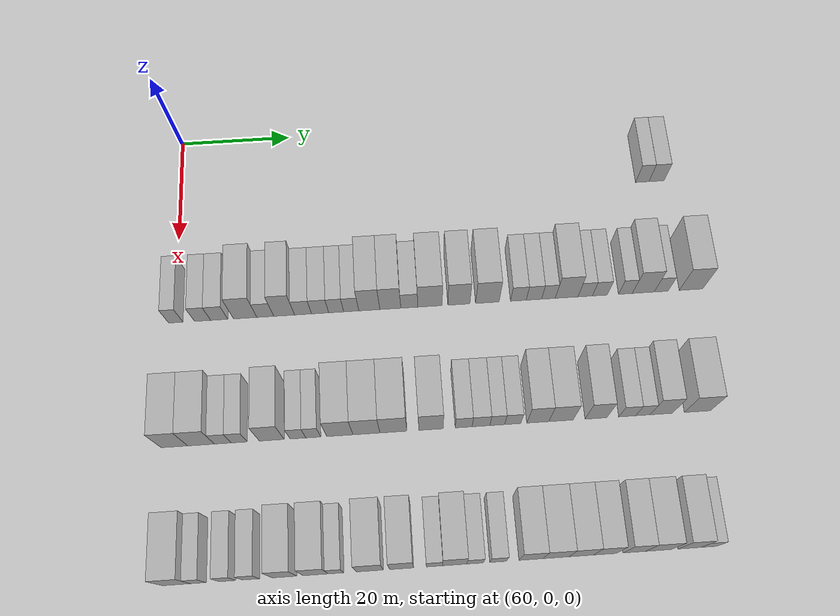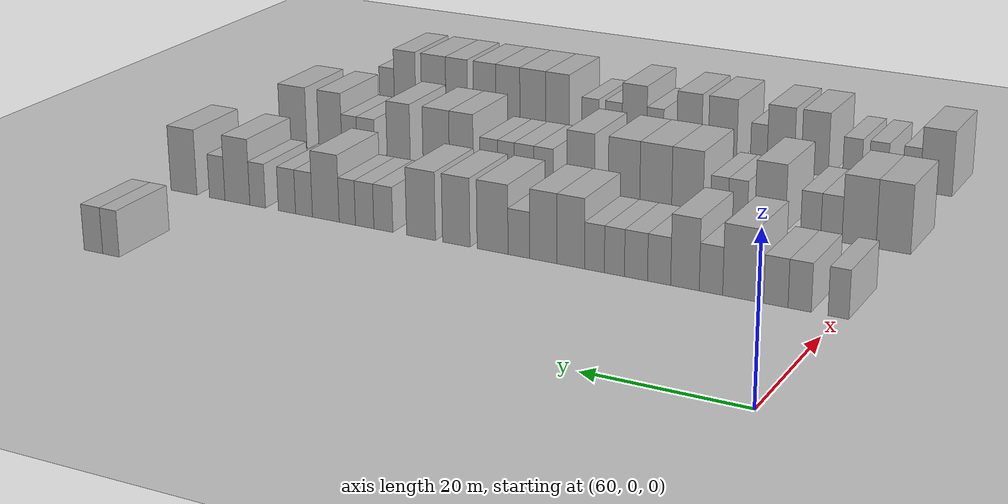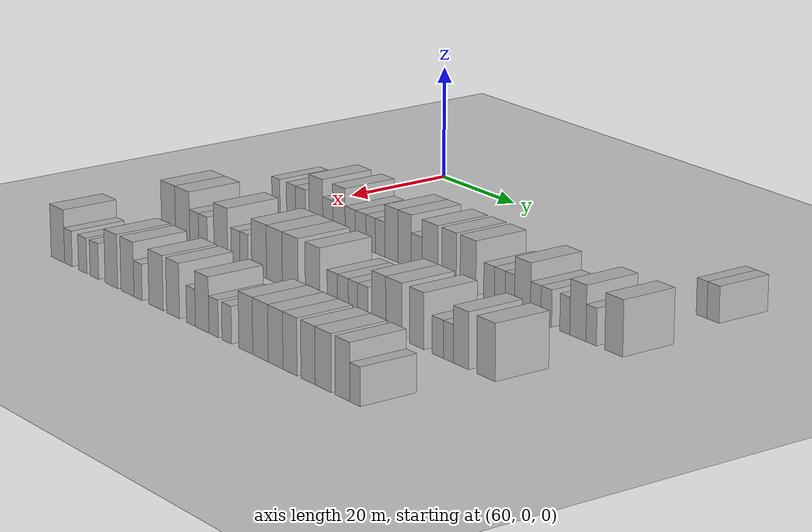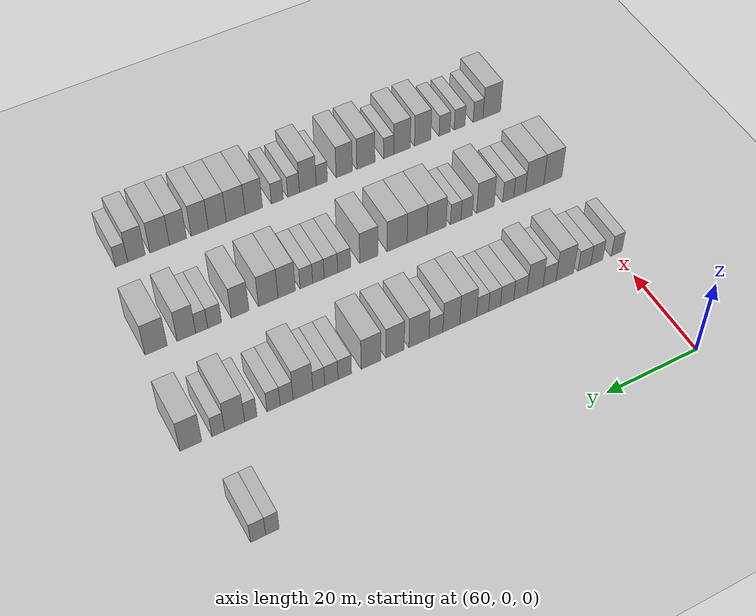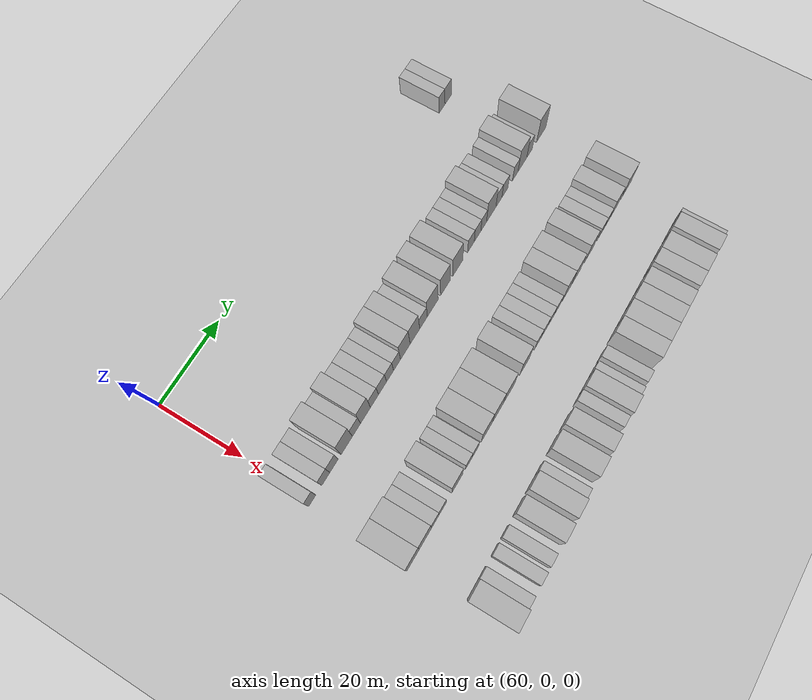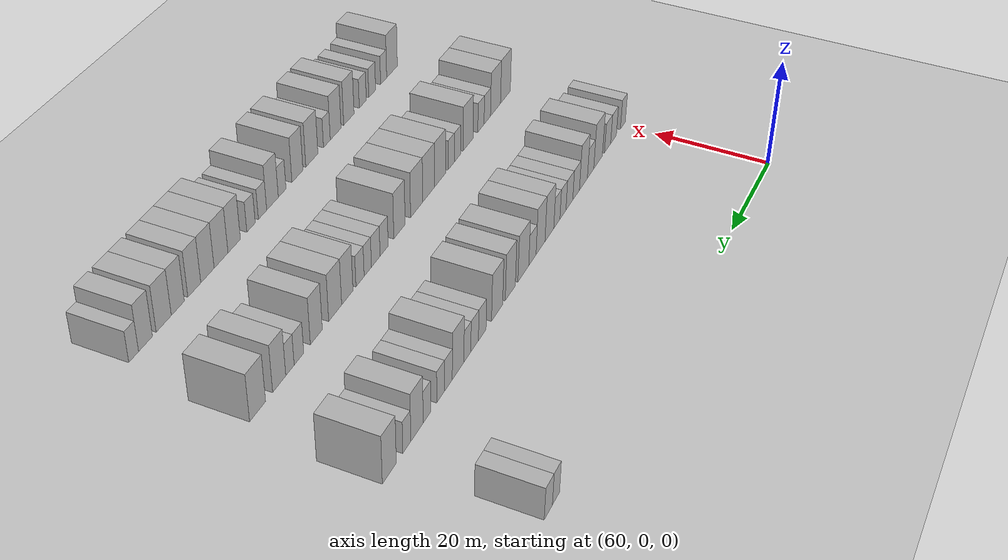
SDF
<sdf version="1.6">
 <world name="default">
  <include>
   <name>ground_plane_2</name>
   <uri>model://HANNAS_ground_plane</uri>
   <pose>100 0 0  0 0 0</pose>
  </include>
  <model name="building_496">
   <static>1</static>
   <pose>69.0000 85.3006 0 0.000000 0.000000 0.000000</pose>
   <link name="link">
    <pose>0 0 3.00 0 0 0</pose>
    <collision name="collision"><geometry><box><size>10.0000 2.5053 6.0000</size></box></geometry></collision>
    <visual name="visual">
     <cast_shadows>0</cast_shadows>
     <geometry><box><size>10.0000 2.5053 6.0000</size></box></geometry>
     <material>
      <script>
       <uri>model://HANNAS_wall/materials/scripts</uri>
       <uri>model://HANNAS_wall/materials/textures</uri>
       <name>vrc/HANNAS_wall</name>
      </script>
     </material>
    </visual>
   </link>
  </model>
  <model name="building_497">
   <static>1</static>
   <pose>69.0000 87.9721 0 0.000000 0.000000 0.000000</pose>
   <link name="link">
    <pose>0 0 3.00 0 0 0</pose>
    <collision name="collision"><geometry><box><size>10.0000 2.8376 6.0000</size></box></geometry></collision>
    <visual name="visual">
     <cast_shadows>0</cast_shadows>
     <geometry><box><size>10.0000 2.8376 6.0000</size></box></geometry>
     <material>
      <script>
       <uri>model://HANNAS_wall/materials/scripts</uri>
       <uri>model://HANNAS_wall/materials/textures</uri>
       <name>vrc/HANNAS_wall</name>
      </script>
     </material>
    </visual>
   </link>
  </model>
  <model name="building_666">
   <static>1</static>
   <pose>91.0000 0.0036 0 0.000000 0.000000 0.000000</pose>
   <link name="link">
    <pose>0 0 3.00 0 0 0</pose>
    <collision name="collision"><geometry><box><size>10.0000 2.4846 6.0000</size></box></geometry></collision>
    <visual name="visual">
     <cast_shadows>0</cast_shadows>
     <geometry><box><size>10.0000 2.4846 6.0000</size></box></geometry>
     <material>
      <script>
       <uri>model://HANNAS_wall/materials/scripts</uri>
       <uri>model://HANNAS_wall/materials/textures</uri>
       <name>vrc/HANNAS_wall</name>
      </script>
     </material>
    </visual>
   </link>
  </model>
  <model name="building_667">
   <static>1</static>
   <pose>91.0000 4.6505 0 0.000000 0.000000 0.000000</pose>
   <link name="link">
    <pose>0 0 3.00 0 0 0</pose>
    <collision name="collision"><geometry><box><size>10.0000 2.8091 6.0000</size></box></geometry></collision>
    <visual name="visual">
     <cast_shadows>0</cast_shadows>
     <geometry><box><size>10.0000 2.8091 6.0000</size></box></geometry>
     <material>
      <script>
       <uri>model://HANNAS_wall/materials/scripts</uri>
       <uri>model://HANNAS_wall/materials/textures</uri>
       <name>vrc/HANNAS_wall</name>
      </script>
     </material>
    </visual>
   </link>
  </model>
  <model name="building_668">
   <static>1</static>
   <pose>91.0000 7.5426 0 0.000000 0.000000 0.000000</pose>
   <link name="link">
    <pose>0 0 3.00 0 0 0</pose>
    <collision name="collision"><geometry><box><size>10.0000 2.9751 6.0000</size></box></geometry></collision>
    <visual name="visual">
     <cast_shadows>0</cast_shadows>
     <geometry><box><size>10.0000 2.9751 6.0000</size></box></geometry>
     <material>
      <script>
       <uri>model://HANNAS_wall/materials/scripts</uri>
       <uri>model://HANNAS_wall/materials/textures</uri>
       <name>vrc/HANNAS_wall</name>
      </script>
     </material>
    </visual>
   </link>
  </model>
  <model name="building_669">
   <static>1</static>
   <pose>91.0000 12.0635 0 0.000000 0.000000 0.000000</pose>
   <link name="link">
    <pose>0 0 4.50 0 0 0</pose>
    <collision name="collision"><geometry><box><size>10.0000 4.0667 9.0000</size></box></geometry></collision>
    <visual name="visual">
     <cast_shadows>0</cast_shadows>
     <geometry><box><size>10.0000 4.0667 9.0000</size></box></geometry>
     <material>
      <script>
       <uri>model://HANNAS_wall/materials/scripts</uri>
       <uri>model://HANNAS_wall/materials/textures</uri>
       <name>vrc/HANNAS_wall</name>
      </script>
     </material>
    </visual>
   </link>
  </model>
  <model name="building_670">
   <static>1</static>
   <pose>91.0000 15.5641 0 0.000000 0.000000 0.000000</pose>
   <link name="link">
    <pose>0 0 3.00 0 0 0</pose>
    <collision name="collision"><geometry><box><size>10.0000 2.9344 6.0000</size></box></geometry></collision>
    <visual name="visual">
     <cast_shadows>0</cast_shadows>
     <geometry><box><size>10.0000 2.9344 6.0000</size></box></geometry>
     <material>
      <script>
       <uri>model://HANNAS_wall/materials/scripts</uri>
       <uri>model://HANNAS_wall/materials/textures</uri>
       <name>vrc/HANNAS_wall</name>
      </script>
     </material>
    </visual>
   </link>
  </model>
  <model name="building_671">
   <static>1</static>
   <pose>91.0000 18.8456 0 0.000000 0.000000 0.000000</pose>
   <link name="link">
    <pose>0 0 4.50 0 0 0</pose>
    <collision name="collision"><geometry><box><size>10.0000 3.6286 9.0000</size></box></geometry></collision>
    <visual name="visual">
     <cast_shadows>0</cast_shadows>
     <geometry><box><size>10.0000 3.6286 9.0000</size></box></geometry>
     <material>
      <script>
       <uri>model://HANNAS_wall/materials/scripts</uri>
       <uri>model://HANNAS_wall/materials/textures</uri>
       <name>vrc/HANNAS_wall</name>
      </script>
     </material>
    </visual>
   </link>
  </model>
  <model name="building_672">
   <static>1</static>
   <pose>91.0000 22.1494 0 0.000000 0.000000 0.000000</pose>
   <link name="link">
    <pose>0 0 3.00 0 0 0</pose>
    <collision name="collision"><geometry><box><size>10.0000 2.9791 6.0000</size></box></geometry></collision>
    <visual name="visual">
     <cast_shadows>0</cast_shadows>
     <geometry><box><size>10.0000 2.9791 6.0000</size></box></geometry>
     <material>
      <script>
       <uri>model://HANNAS_wall/materials/scripts</uri>
       <uri>model://HANNAS_wall/materials/textures</uri>
       <name>vrc/HANNAS_wall</name>
      </script>
     </material>
    </visual>
   </link>
  </model>
  <model name="building_673">
   <static>1</static>
   <pose>91.0000 25.1329 0 0.000000 0.000000 0.000000</pose>
   <link name="link">
    <pose>0 0 3.00 0 0 0</pose>
    <collision name="collision"><geometry><box><size>10.0000 2.9878 6.0000</size></box></geometry></collision>
    <visual name="visual">
     <cast_shadows>0</cast_shadows>
     <geometry><box><size>10.0000 2.9878 6.0000</size></box></geometry>
     <material>
      <script>
       <uri>model://HANNAS_wall/materials/scripts</uri>
       <uri>model://HANNAS_wall/materials/textures</uri>
       <name>vrc/HANNAS_wall</name>
      </script>
     </material>
    </visual>
   </link>
  </model>
  <model name="building_674">
   <static>1</static>
   <pose>91.0000 27.9449 0 0.000000 0.000000 0.000000</pose>
   <link name="link">
    <pose>0 0 3.00 0 0 0</pose>
    <collision name="collision"><geometry><box><size>10.0000 2.6363 6.0000</size></box></geometry></collision>
    <visual name="visual">
     <cast_shadows>0</cast_shadows>
     <geometry><box><size>10.0000 2.6363 6.0000</size></box></geometry>
     <material>
      <script>
       <uri>model://HANNAS_wall/materials/scripts</uri>
       <uri>model://HANNAS_wall/materials/textures</uri>
       <name>vrc/HANNAS_wall</name>
      </script>
     </material>
    </visual>
   </link>
  </model>
  <model name="building_675">
   <static>1</static>
   <pose>91.0000 30.5780 0 0.000000 0.000000 0.000000</pose>
   <link name="link">
    <pose>0 0 3.00 0 0 0</pose>
    <collision name="collision"><geometry><box><size>10.0000 2.6299 6.0000</size></box></geometry></collision>
    <visual name="visual">
     <cast_shadows>0</cast_shadows>
     <geometry><box><size>10.0000 2.6299 6.0000</size></box></geometry>
     <material>
      <script>
       <uri>model://HANNAS_wall/materials/scripts</uri>
       <uri>model://HANNAS_wall/materials/textures</uri>
       <name>vrc/HANNAS_wall</name>
      </script>
     </material>
    </visual>
   </link>
  </model>
  <model name="building_676">
   <static>1</static>
   <pose>91.0000 33.7360 0 0.000000 0.000000 0.000000</pose>
   <link name="link">
    <pose>0 0 4.50 0 0 0</pose>
    <collision name="collision"><geometry><box><size>10.0000 3.6861 9.0000</size></box></geometry></collision>
    <visual name="visual">
     <cast_shadows>0</cast_shadows>
     <geometry><box><size>10.0000 3.6861 9.0000</size></box></geometry>
     <material>
      <script>
       <uri>model://HANNAS_wall/materials/scripts</uri>
       <uri>model://HANNAS_wall/materials/textures</uri>
       <name>vrc/HANNAS_wall</name>
      </script>
     </material>
    </visual>
   </link>
  </model>
  <model name="building_677">
   <static>1</static>
   <pose>91.0000 37.4193 0 0.000000 0.000000 0.000000</pose>
   <link name="link">
    <pose>0 0 4.50 0 0 0</pose>
    <collision name="collision"><geometry><box><size>10.0000 3.6805 9.0000</size></box></geometry></collision>
    <visual name="visual">
     <cast_shadows>0</cast_shadows>
     <geometry><box><size>10.0000 3.6805 9.0000</size></box></geometry>
     <material>
      <script>
       <uri>model://HANNAS_wall/materials/scripts</uri>
       <uri>model://HANNAS_wall/materials/textures</uri>
       <name>vrc/HANNAS_wall</name>
      </script>
     </material>
    </visual>
   </link>
  </model>
  <model name="building_678">
   <static>1</static>
   <pose>91.0000 40.7486 0 0.000000 0.000000 0.000000</pose>
   <link name="link">
    <pose>0 0 3.00 0 0 0</pose>
    <collision name="collision"><geometry><box><size>10.0000 2.9781 6.0000</size></box></geometry></collision>
    <visual name="visual">
     <cast_shadows>0</cast_shadows>
     <geometry><box><size>10.0000 2.9781 6.0000</size></box></geometry>
     <material>
      <script>
       <uri>model://HANNAS_wall/materials/scripts</uri>
       <uri>model://HANNAS_wall/materials/textures</uri>
       <name>vrc/HANNAS_wall</name>
      </script>
     </material>
    </visual>
   </link>
  </model>
  <model name="building_679">
   <static>1</static>
   <pose>91.0000 44.3851 0 0.000000 0.000000 0.000000</pose>
   <link name="link">
    <pose>0 0 4.50 0 0 0</pose>
    <collision name="collision"><geometry><box><size>10.0000 4.2949 9.0000</size></box></geometry></collision>
    <visual name="visual">
     <cast_shadows>0</cast_shadows>
     <geometry><box><size>10.0000 4.2949 9.0000</size></box></geometry>
     <material>
      <script>
       <uri>model://HANNAS_wall/materials/scripts</uri>
       <uri>model://HANNAS_wall/materials/textures</uri>
       <name>vrc/HANNAS_wall</name>
      </script>
     </material>
    </visual>
   </link>
  </model>
  <model name="building_680">
   <static>1</static>
   <pose>91.0000 49.4711 0 0.000000 0.000000 0.000000</pose>
   <link name="link">
    <pose>0 0 4.50 0 0 0</pose>
    <collision name="collision"><geometry><box><size>10.0000 3.8771 9.0000</size></box></geometry></collision>
    <visual name="visual">
     <cast_shadows>0</cast_shadows>
     <geometry><box><size>10.0000 3.8771 9.0000</size></box></geometry>
     <material>
      <script>
       <uri>model://HANNAS_wall/materials/scripts</uri>
       <uri>model://HANNAS_wall/materials/textures</uri>
       <name>vrc/HANNAS_wall</name>
      </script>
     </material>
    </visual>
   </link>
  </model>
  <model name="building_681">
   <static>1</static>
   <pose>91.0000 54.4871 0 0.000000 0.000000 0.000000</pose>
   <link name="link">
    <pose>0 0 4.50 0 0 0</pose>
    <collision name="collision"><geometry><box><size>10.0000 4.1550 9.0000</size></box></geometry></collision>
    <visual name="visual">
     <cast_shadows>0</cast_shadows>
     <geometry><box><size>10.0000 4.1550 9.0000</size></box></geometry>
     <material>
      <script>
       <uri>model://HANNAS_wall/materials/scripts</uri>
       <uri>model://HANNAS_wall/materials/textures</uri>
       <name>vrc/HANNAS_wall</name>
      </script>
     </material>
    </visual>
   </link>
  </model>
  <model name="building_682">
   <static>1</static>
   <pose>91.0000 59.9533 0 0.000000 0.000000 0.000000</pose>
   <link name="link">
    <pose>0 0 3.00 0 0 0</pose>
    <collision name="collision"><geometry><box><size>10.0000 2.7775 6.0000</size></box></geometry></collision>
    <visual name="visual">
     <cast_shadows>0</cast_shadows>
     <geometry><box><size>10.0000 2.7775 6.0000</size></box></geometry>
     <material>
      <script>
       <uri>model://HANNAS_wall/materials/scripts</uri>
       <uri>model://HANNAS_wall/materials/textures</uri>
       <name>vrc/HANNAS_wall</name>
      </script>
     </material>
    </visual>
   </link>
  </model>
  <model name="building_683">
   <static>1</static>
   <pose>91.0000 62.7021 0 0.000000 0.000000 0.000000</pose>
   <link name="link">
    <pose>0 0 3.00 0 0 0</pose>
    <collision name="collision"><geometry><box><size>10.0000 2.7201 6.0000</size></box></geometry></collision>
    <visual name="visual">
     <cast_shadows>0</cast_shadows>
     <geometry><box><size>10.0000 2.7201 6.0000</size></box></geometry>
     <material>
      <script>
       <uri>model://HANNAS_wall/materials/scripts</uri>
       <uri>model://HANNAS_wall/materials/textures</uri>
       <name>vrc/HANNAS_wall</name>
      </script>
     </material>
    </visual>
   </link>
  </model>
  <model name="building_684">
   <static>1</static>
   <pose>91.0000 65.2736 0 0.000000 0.000000 0.000000</pose>
   <link name="link">
    <pose>0 0 3.00 0 0 0</pose>
    <collision name="collision"><geometry><box><size>10.0000 2.4228 6.0000</size></box></geometry></collision>
    <visual name="visual">
     <cast_shadows>0</cast_shadows>
     <geometry><box><size>10.0000 2.4228 6.0000</size></box></geometry>
     <material>
      <script>
       <uri>model://HANNAS_wall/materials/scripts</uri>
       <uri>model://HANNAS_wall/materials/textures</uri>
       <name>vrc/HANNAS_wall</name>
      </script>
     </material>
    </visual>
   </link>
  </model>
  <model name="building_685">
   <static>1</static>
   <pose>91.0000 68.4941 0 0.000000 0.000000 0.000000</pose>
   <link name="link">
    <pose>0 0 4.50 0 0 0</pose>
    <collision name="collision"><geometry><box><size>10.0000 4.0181 9.0000</size></box></geometry></collision>
    <visual name="visual">
     <cast_shadows>0</cast_shadows>
     <geometry><box><size>10.0000 4.0181 9.0000</size></box></geometry>
     <material>
      <script>
       <uri>model://HANNAS_wall/materials/scripts</uri>
       <uri>model://HANNAS_wall/materials/textures</uri>
       <name>vrc/HANNAS_wall</name>
      </script>
     </material>
    </visual>
   </link>
  </model>
  <model name="building_686">
   <static>1</static>
   <pose>91.0000 71.7893 0 0.000000 0.000000 0.000000</pose>
   <link name="link">
    <pose>0 0 3.00 0 0 0</pose>
    <collision name="collision"><geometry><box><size>10.0000 2.5723 6.0000</size></box></geometry></collision>
    <visual name="visual">
     <cast_shadows>0</cast_shadows>
     <geometry><box><size>10.0000 2.5723 6.0000</size></box></geometry>
     <material>
      <script>
       <uri>model://HANNAS_wall/materials/scripts</uri>
       <uri>model://HANNAS_wall/materials/textures</uri>
       <name>vrc/HANNAS_wall</name>
      </script>
     </material>
    </visual>
   </link>
  </model>
  <model name="building_687">
   <static>1</static>
   <pose>91.0000 74.3923 0 0.000000 0.000000 0.000000</pose>
   <link name="link">
    <pose>0 0 3.00 0 0 0</pose>
    <collision name="collision"><geometry><box><size>10.0000 2.6337 6.0000</size></box></geometry></collision>
    <visual name="visual">
     <cast_shadows>0</cast_shadows>
     <geometry><box><size>10.0000 2.6337 6.0000</size></box></geometry>
     <material>
      <script>
       <uri>model://HANNAS_wall/materials/scripts</uri>
       <uri>model://HANNAS_wall/materials/textures</uri>
       <name>vrc/HANNAS_wall</name>
      </script>
     </material>
    </visual>
   </link>
  </model>
  <model name="building_688">
   <static>1</static>
   <pose>91.0000 78.9256 0 0.000000 0.000000 0.000000</pose>
   <link name="link">
    <pose>0 0 3.00 0 0 0</pose>
    <collision name="collision"><geometry><box><size>10.0000 2.4327 6.0000</size></box></geometry></collision>
    <visual name="visual">
     <cast_shadows>0</cast_shadows>
     <geometry><box><size>10.0000 2.4327 6.0000</size></box></geometry>
     <material>
      <script>
       <uri>model://HANNAS_wall/materials/scripts</uri>
       <uri>model://HANNAS_wall/materials/textures</uri>
       <name>vrc/HANNAS_wall</name>
      </script>
     </material>
    </visual>
   </link>
  </model>
  <model name="building_689">
   <static>1</static>
   <pose>91.0000 82.0975 0 0.000000 0.000000 0.000000</pose>
   <link name="link">
    <pose>0 0 4.50 0 0 0</pose>
    <collision name="collision"><geometry><box><size>10.0000 3.9112 9.0000</size></box></geometry></collision>
    <visual name="visual">
     <cast_shadows>0</cast_shadows>
     <geometry><box><size>10.0000 3.9112 9.0000</size></box></geometry>
     <material>
      <script>
       <uri>model://HANNAS_wall/materials/scripts</uri>
       <uri>model://HANNAS_wall/materials/textures</uri>
       <name>vrc/HANNAS_wall</name>
      </script>
     </material>
    </visual>
   </link>
  </model>
  <model name="building_690">
   <static>1</static>
   <pose>91.0000 85.2894 0 0.000000 0.000000 0.000000</pose>
   <link name="link">
    <pose>0 0 3.00 0 0 0</pose>
    <collision name="collision"><geometry><box><size>10.0000 2.4726 6.0000</size></box></geometry></collision>
    <visual name="visual">
     <cast_shadows>0</cast_shadows>
     <geometry><box><size>10.0000 2.4726 6.0000</size></box></geometry>
     <material>
      <script>
       <uri>model://HANNAS_wall/materials/scripts</uri>
       <uri>model://HANNAS_wall/materials/textures</uri>
       <name>vrc/HANNAS_wall</name>
      </script>
     </material>
    </visual>
   </link>
  </model>
  <model name="building_691">
   <static>1</static>
   <pose>91.0000 90.6233 0 0.000000 0.000000 0.000000</pose>
   <link name="link">
    <pose>0 0 4.50 0 0 0</pose>
    <collision name="collision"><geometry><box><size>10.0000 4.1953 9.0000</size></box></geometry></collision>
    <visual name="visual">
     <cast_shadows>0</cast_shadows>
     <geometry><box><size>10.0000 4.1953 9.0000</size></box></geometry>
     <material>
      <script>
       <uri>model://HANNAS_wall/materials/scripts</uri>
       <uri>model://HANNAS_wall/materials/textures</uri>
       <name>vrc/HANNAS_wall</name>
      </script>
     </material>
    </visual>
   </link>
  </model>
  <model name="building_861">
   <static>1</static>
   <pose>113.0000 0.5515 0 0.000000 0.000000 0.000000</pose>
   <link name="link">
    <pose>0 0 4.50 0 0 0</pose>
    <collision name="collision"><geometry><box><size>10.0000 4.3898 9.0000</size></box></geometry></collision>
    <visual name="visual">
     <cast_shadows>0</cast_shadows>
     <geometry><box><size>10.0000 4.3898 9.0000</size></box></geometry>
     <material>
      <script>
       <uri>model://HANNAS_wall/materials/scripts</uri>
       <uri>model://HANNAS_wall/materials/textures</uri>
       <name>vrc/HANNAS_wall</name>
      </script>
     </material>
    </visual>
   </link>
  </model>
  <model name="building_862">
   <static>1</static>
   <pose>113.0000 4.9436 0 0.000000 0.000000 0.000000</pose>
   <link name="link">
    <pose>0 0 4.50 0 0 0</pose>
    <collision name="collision"><geometry><box><size>10.0000 4.3943 9.0000</size></box></geometry></collision>
    <visual name="visual">
     <cast_shadows>0</cast_shadows>
     <geometry><box><size>10.0000 4.3943 9.0000</size></box></geometry>
     <material>
      <script>
       <uri>model://HANNAS_wall/materials/scripts</uri>
       <uri>model://HANNAS_wall/materials/textures</uri>
       <name>vrc/HANNAS_wall</name>
      </script>
     </material>
    </visual>
   </link>
  </model>
  <model name="building_863">
   <static>1</static>
   <pose>113.0000 8.5275 0 0.000000 0.000000 0.000000</pose>
   <link name="link">
    <pose>0 0 3.00 0 0 0</pose>
    <collision name="collision"><geometry><box><size>10.0000 2.7736 6.0000</size></box></geometry></collision>
    <visual name="visual">
     <cast_shadows>0</cast_shadows>
     <geometry><box><size>10.0000 2.7736 6.0000</size></box></geometry>
     <material>
      <script>
       <uri>model://HANNAS_wall/materials/scripts</uri>
       <uri>model://HANNAS_wall/materials/textures</uri>
       <name>vrc/HANNAS_wall</name>
      </script>
     </material>
    </visual>
   </link>
  </model>
  <model name="building_864">
   <static>1</static>
   <pose>113.0000 11.2412 0 0.000000 0.000000 0.000000</pose>
   <link name="link">
    <pose>0 0 3.00 0 0 0</pose>
    <collision name="collision"><geometry><box><size>10.0000 2.6538 6.0000</size></box></geometry></collision>
    <visual name="visual">
     <cast_shadows>0</cast_shadows>
     <geometry><box><size>10.0000 2.6538 6.0000</size></box></geometry>
     <material>
      <script>
       <uri>model://HANNAS_wall/materials/scripts</uri>
       <uri>model://HANNAS_wall/materials/textures</uri>
       <name>vrc/HANNAS_wall</name>
      </script>
     </material>
    </visual>
   </link>
  </model>
  <model name="building_865">
   <static>1</static>
   <pose>113.0000 16.6194 0 0.000000 0.000000 0.000000</pose>
   <link name="link">
    <pose>0 0 4.50 0 0 0</pose>
    <collision name="collision"><geometry><box><size>10.0000 4.1024 9.0000</size></box></geometry></collision>
    <visual name="visual">
     <cast_shadows>0</cast_shadows>
     <geometry><box><size>10.0000 4.1024 9.0000</size></box></geometry>
     <material>
      <script>
       <uri>model://HANNAS_wall/materials/scripts</uri>
       <uri>model://HANNAS_wall/materials/textures</uri>
       <name>vrc/HANNAS_wall</name>
      </script>
     </material>
    </visual>
   </link>
  </model>
  <model name="building_866">
   <static>1</static>
   <pose>113.0000 20.9766 0 0.000000 0.000000 0.000000</pose>
   <link name="link">
    <pose>0 0 3.00 0 0 0</pose>
    <collision name="collision"><geometry><box><size>10.0000 2.6120 6.0000</size></box></geometry></collision>
    <visual name="visual">
     <cast_shadows>0</cast_shadows>
     <geometry><box><size>10.0000 2.6120 6.0000</size></box></geometry>
     <material>
      <script>
       <uri>model://HANNAS_wall/materials/scripts</uri>
       <uri>model://HANNAS_wall/materials/textures</uri>
       <name>vrc/HANNAS_wall</name>
      </script>
     </material>
    </visual>
   </link>
  </model>
  <model name="building_867">
   <static>1</static>
   <pose>113.0000 23.5075 0 0.000000 0.000000 0.000000</pose>
   <link name="link">
    <pose>0 0 3.00 0 0 0</pose>
    <collision name="collision"><geometry><box><size>10.0000 2.4498 6.0000</size></box></geometry></collision>
    <visual name="visual">
     <cast_shadows>0</cast_shadows>
     <geometry><box><size>10.0000 2.4498 6.0000</size></box></geometry>
     <material>
      <script>
       <uri>model://HANNAS_wall/materials/scripts</uri>
       <uri>model://HANNAS_wall/materials/textures</uri>
       <name>vrc/HANNAS_wall</name>
      </script>
     </material>
    </visual>
   </link>
  </model>
  <model name="building_868">
   <static>1</static>
   <pose>113.0000 27.9110 0 0.000000 0.000000 0.000000</pose>
   <link name="link">
    <pose>0 0 4.50 0 0 0</pose>
    <collision name="collision"><geometry><box><size>10.0000 4.3572 9.0000</size></box></geometry></collision>
    <visual name="visual">
     <cast_shadows>0</cast_shadows>
     <geometry><box><size>10.0000 4.3572 9.0000</size></box></geometry>
     <material>
      <script>
       <uri>model://HANNAS_wall/materials/scripts</uri>
       <uri>model://HANNAS_wall/materials/textures</uri>
       <name>vrc/HANNAS_wall</name>
      </script>
     </material>
    </visual>
   </link>
  </model>
  <model name="building_869">
   <static>1</static>
   <pose>113.0000 32.3331 0 0.000000 0.000000 0.000000</pose>
   <link name="link">
    <pose>0 0 4.50 0 0 0</pose>
    <collision name="collision"><geometry><box><size>10.0000 4.4871 9.0000</size></box></geometry></collision>
    <visual name="visual">
     <cast_shadows>0</cast_shadows>
     <geometry><box><size>10.0000 4.4871 9.0000</size></box></geometry>
     <material>
      <script>
       <uri>model://HANNAS_wall/materials/scripts</uri>
       <uri>model://HANNAS_wall/materials/textures</uri>
       <name>vrc/HANNAS_wall</name>
      </script>
     </material>
    </visual>
   </link>
  </model>
  <model name="building_870">
   <static>1</static>
   <pose>113.0000 36.8225 0 0.000000 0.000000 0.000000</pose>
   <link name="link">
    <pose>0 0 4.50 0 0 0</pose>
    <collision name="collision"><geometry><box><size>10.0000 4.4917 9.0000</size></box></geometry></collision>
    <visual name="visual">
     <cast_shadows>0</cast_shadows>
     <geometry><box><size>10.0000 4.4917 9.0000</size></box></geometry>
     <material>
      <script>
       <uri>model://HANNAS_wall/materials/scripts</uri>
       <uri>model://HANNAS_wall/materials/textures</uri>
       <name>vrc/HANNAS_wall</name>
      </script>
     </material>
    </visual>
   </link>
  </model>
  <model name="building_871">
   <static>1</static>
   <pose>113.0000 43.0977 0 0.000000 0.000000 0.000000</pose>
   <link name="link">
    <pose>0 0 4.50 0 0 0</pose>
    <collision name="collision"><geometry><box><size>10.0000 4.0587 9.0000</size></box></geometry></collision>
    <visual name="visual">
     <cast_shadows>0</cast_shadows>
     <geometry><box><size>10.0000 4.0587 9.0000</size></box></geometry>
     <material>
      <script>
       <uri>model://HANNAS_wall/materials/scripts</uri>
       <uri>model://HANNAS_wall/materials/textures</uri>
       <name>vrc/HANNAS_wall</name>
      </script>
     </material>
    </visual>
   </link>
  </model>
  <model name="building_872">
   <static>1</static>
   <pose>113.0000 48.5375 0 0.000000 0.000000 0.000000</pose>
   <link name="link">
    <pose>0 0 3.00 0 0 0</pose>
    <collision name="collision"><geometry><box><size>10.0000 2.8209 6.0000</size></box></geometry></collision>
    <visual name="visual">
     <cast_shadows>0</cast_shadows>
     <geometry><box><size>10.0000 2.8209 6.0000</size></box></geometry>
     <material>
      <script>
       <uri>model://HANNAS_wall/materials/scripts</uri>
       <uri>model://HANNAS_wall/materials/textures</uri>
       <name>vrc/HANNAS_wall</name>
      </script>
     </material>
    </visual>
   </link>
  </model>
  <model name="building_873">
   <static>1</static>
   <pose>113.0000 51.4304 0 0.000000 0.000000 0.000000</pose>
   <link name="link">
    <pose>0 0 3.00 0 0 0</pose>
    <collision name="collision"><geometry><box><size>10.0000 2.9650 6.0000</size></box></geometry></collision>
    <visual name="visual">
     <cast_shadows>0</cast_shadows>
     <geometry><box><size>10.0000 2.9650 6.0000</size></box></geometry>
     <material>
      <script>
       <uri>model://HANNAS_wall/materials/scripts</uri>
       <uri>model://HANNAS_wall/materials/textures</uri>
       <name>vrc/HANNAS_wall</name>
      </script>
     </material>
    </visual>
   </link>
  </model>
  <model name="building_874">
   <static>1</static>
   <pose>113.0000 54.1453 0 0.000000 0.000000 0.000000</pose>
   <link name="link">
    <pose>0 0 3.00 0 0 0</pose>
    <collision name="collision"><geometry><box><size>10.0000 2.4648 6.0000</size></box></geometry></collision>
    <visual name="visual">
     <cast_shadows>0</cast_shadows>
     <geometry><box><size>10.0000 2.4648 6.0000</size></box></geometry>
     <material>
      <script>
       <uri>model://HANNAS_wall/materials/scripts</uri>
       <uri>model://HANNAS_wall/materials/textures</uri>
       <name>vrc/HANNAS_wall</name>
      </script>
     </material>
    </visual>
   </link>
  </model>
  <model name="building_875">
   <static>1</static>
   <pose>113.0000 56.7415 0 0.000000 0.000000 0.000000</pose>
   <link name="link">
    <pose>0 0 3.00 0 0 0</pose>
    <collision name="collision"><geometry><box><size>10.0000 2.7275 6.0000</size></box></geometry></collision>
    <visual name="visual">
     <cast_shadows>0</cast_shadows>
     <geometry><box><size>10.0000 2.7275 6.0000</size></box></geometry>
     <material>
      <script>
       <uri>model://HANNAS_wall/materials/scripts</uri>
       <uri>model://HANNAS_wall/materials/textures</uri>
       <name>vrc/HANNAS_wall</name>
      </script>
     </material>
    </visual>
   </link>
  </model>
  <model name="building_876">
   <static>1</static>
   <pose>113.0000 60.9465 0 0.000000 0.000000 0.000000</pose>
   <link name="link">
    <pose>0 0 4.50 0 0 0</pose>
    <collision name="collision"><geometry><box><size>10.0000 3.6826 9.0000</size></box></geometry></collision>
    <visual name="visual">
     <cast_shadows>0</cast_shadows>
     <geometry><box><size>10.0000 3.6826 9.0000</size></box></geometry>
     <material>
      <script>
       <uri>model://HANNAS_wall/materials/scripts</uri>
       <uri>model://HANNAS_wall/materials/textures</uri>
       <name>vrc/HANNAS_wall</name>
      </script>
     </material>
    </visual>
   </link>
  </model>
  <model name="building_877">
   <static>1</static>
   <pose>113.0000 64.8478 0 0.000000 0.000000 0.000000</pose>
   <link name="link">
    <pose>0 0 4.50 0 0 0</pose>
    <collision name="collision"><geometry><box><size>10.0000 4.1200 9.0000</size></box></geometry></collision>
    <visual name="visual">
     <cast_shadows>0</cast_shadows>
     <geometry><box><size>10.0000 4.1200 9.0000</size></box></geometry>
     <material>
      <script>
       <uri>model://HANNAS_wall/materials/scripts</uri>
       <uri>model://HANNAS_wall/materials/textures</uri>
       <name>vrc/HANNAS_wall</name>
      </script>
     </material>
    </visual>
   </link>
  </model>
  <model name="building_878">
   <static>1</static>
   <pose>113.0000 70.7525 0 0.000000 0.000000 0.000000</pose>
   <link name="link">
    <pose>0 0 4.50 0 0 0</pose>
    <collision name="collision"><geometry><box><size>10.0000 3.6893 9.0000</size></box></geometry></collision>
    <visual name="visual">
     <cast_shadows>0</cast_shadows>
     <geometry><box><size>10.0000 3.6893 9.0000</size></box></geometry>
     <material>
      <script>
       <uri>model://HANNAS_wall/materials/scripts</uri>
       <uri>model://HANNAS_wall/materials/textures</uri>
       <name>vrc/HANNAS_wall</name>
      </script>
     </material>
    </visual>
   </link>
  </model>
  <model name="building_879">
   <static>1</static>
   <pose>113.0000 76.0265 0 0.000000 0.000000 0.000000</pose>
   <link name="link">
    <pose>0 0 3.00 0 0 0</pose>
    <collision name="collision"><geometry><box><size>10.0000 2.8587 6.0000</size></box></geometry></collision>
    <visual name="visual">
     <cast_shadows>0</cast_shadows>
     <geometry><box><size>10.0000 2.8587 6.0000</size></box></geometry>
     <material>
      <script>
       <uri>model://HANNAS_wall/materials/scripts</uri>
       <uri>model://HANNAS_wall/materials/textures</uri>
       <name>vrc/HANNAS_wall</name>
      </script>
     </material>
    </visual>
   </link>
  </model>
  <model name="building_880">
   <static>1</static>
   <pose>113.0000 78.6848 0 0.000000 0.000000 0.000000</pose>
   <link name="link">
    <pose>0 0 3.00 0 0 0</pose>
    <collision name="collision"><geometry><box><size>10.0000 2.4579 6.0000</size></box></geometry></collision>
    <visual name="visual">
     <cast_shadows>0</cast_shadows>
     <geometry><box><size>10.0000 2.4579 6.0000</size></box></geometry>
     <material>
      <script>
       <uri>model://HANNAS_wall/materials/scripts</uri>
       <uri>model://HANNAS_wall/materials/textures</uri>
       <name>vrc/HANNAS_wall</name>
      </script>
     </material>
    </visual>
   </link>
  </model>
  <model name="building_881">
   <static>1</static>
   <pose>113.0000 81.8038 0 0.000000 0.000000 0.000000</pose>
   <link name="link">
    <pose>0 0 4.50 0 0 0</pose>
    <collision name="collision"><geometry><box><size>10.0000 3.7800 9.0000</size></box></geometry></collision>
    <visual name="visual">
     <cast_shadows>0</cast_shadows>
     <geometry><box><size>10.0000 3.7800 9.0000</size></box></geometry>
     <material>
      <script>
       <uri>model://HANNAS_wall/materials/scripts</uri>
       <uri>model://HANNAS_wall/materials/textures</uri>
       <name>vrc/HANNAS_wall</name>
      </script>
     </material>
    </visual>
   </link>
  </model>
  <model name="building_882">
   <static>1</static>
   <pose>113.0000 87.9144 0 0.000000 0.000000 0.000000</pose>
   <link name="link">
    <pose>0 0 4.50 0 0 0</pose>
    <collision name="collision"><geometry><box><size>10.0000 4.4413 9.0000</size></box></geometry></collision>
    <visual name="visual">
     <cast_shadows>0</cast_shadows>
     <geometry><box><size>10.0000 4.4413 9.0000</size></box></geometry>
     <material>
      <script>
       <uri>model://HANNAS_wall/materials/scripts</uri>
       <uri>model://HANNAS_wall/materials/textures</uri>
       <name>vrc/HANNAS_wall</name>
      </script>
     </material>
    </visual>
   </link>
  </model>
  <model name="building_1049">
   <static>1</static>
   <pose>135.0000 1.6954 0 0.000000 0.000000 0.000000</pose>
   <link name="link">
    <pose>0 0 4.50 0 0 0</pose>
    <collision name="collision"><geometry><box><size>10.0000 4.3442 9.0000</size></box></geometry></collision>
    <visual name="visual">
     <cast_shadows>0</cast_shadows>
     <geometry><box><size>10.0000 4.3442 9.0000</size></box></geometry>
     <material>
      <script>
       <uri>model://HANNAS_wall/materials/scripts</uri>
       <uri>model://HANNAS_wall/materials/textures</uri>
       <name>vrc/HANNAS_wall</name>
      </script>
     </material>
    </visual>
   </link>
  </model>
  <model name="building_1050">
   <static>1</static>
   <pose>135.0000 5.0819 0 0.000000 0.000000 0.000000</pose>
   <link name="link">
    <pose>0 0 3.00 0 0 0</pose>
    <collision name="collision"><geometry><box><size>10.0000 2.4288 6.0000</size></box></geometry></collision>
    <visual name="visual">
     <cast_shadows>0</cast_shadows>
     <geometry><box><size>10.0000 2.4288 6.0000</size></box></geometry>
     <material>
      <script>
       <uri>model://HANNAS_wall/materials/scripts</uri>
       <uri>model://HANNAS_wall/materials/textures</uri>
       <name>vrc/HANNAS_wall</name>
      </script>
     </material>
    </visual>
   </link>
  </model>
  <model name="building_1051">
   <static>1</static>
   <pose>135.0000 9.6206 0 0.000000 0.000000 0.000000</pose>
   <link name="link">
    <pose>0 0 3.00 0 0 0</pose>
    <collision name="collision"><geometry><box><size>10.0000 2.6485 6.0000</size></box></geometry></collision>
    <visual name="visual">
     <cast_shadows>0</cast_shadows>
     <geometry><box><size>10.0000 2.6485 6.0000</size></box></geometry>
     <material>
      <script>
       <uri>model://HANNAS_wall/materials/scripts</uri>
       <uri>model://HANNAS_wall/materials/textures</uri>
       <name>vrc/HANNAS_wall</name>
      </script>
     </material>
    </visual>
   </link>
  </model>
  <model name="building_1052">
   <static>1</static>
   <pose>135.0000 13.2834 0 0.000000 0.000000 0.000000</pose>
   <link name="link">
    <pose>0 0 3.00 0 0 0</pose>
    <collision name="collision"><geometry><box><size>10.0000 2.6772 6.0000</size></box></geometry></collision>
    <visual name="visual">
     <cast_shadows>0</cast_shadows>
     <geometry><box><size>10.0000 2.6772 6.0000</size></box></geometry>
     <material>
      <script>
       <uri>model://HANNAS_wall/materials/scripts</uri>
       <uri>model://HANNAS_wall/materials/textures</uri>
       <name>vrc/HANNAS_wall</name>
      </script>
     </material>
    </visual>
   </link>
  </model>
  <model name="building_1053">
   <static>1</static>
   <pose>135.0000 18.5626 0 0.000000 0.000000 0.000000</pose>
   <link name="link">
    <pose>0 0 4.50 0 0 0</pose>
    <collision name="collision"><geometry><box><size>10.0000 3.8811 9.0000</size></box></geometry></collision>
    <visual name="visual">
     <cast_shadows>0</cast_shadows>
     <geometry><box><size>10.0000 3.8811 9.0000</size></box></geometry>
     <material>
      <script>
       <uri>model://HANNAS_wall/materials/scripts</uri>
       <uri>model://HANNAS_wall/materials/textures</uri>
       <name>vrc/HANNAS_wall</name>
      </script>
     </material>
    </visual>
   </link>
  </model>
  <model name="building_1054">
   <static>1</static>
   <pose>135.0000 23.4702 0 0.000000 0.000000 0.000000</pose>
   <link name="link">
    <pose>0 0 4.50 0 0 0</pose>
    <collision name="collision"><geometry><box><size>10.0000 3.9340 9.0000</size></box></geometry></collision>
    <visual name="visual">
     <cast_shadows>0</cast_shadows>
     <geometry><box><size>10.0000 3.9340 9.0000</size></box></geometry>
     <material>
      <script>
       <uri>model://HANNAS_wall/materials/scripts</uri>
       <uri>model://HANNAS_wall/materials/textures</uri>
       <name>vrc/HANNAS_wall</name>
      </script>
     </material>
    </visual>
   </link>
  </model>
  <model name="building_1055">
   <static>1</static>
   <pose>135.0000 26.6569 0 0.000000 0.000000 0.000000</pose>
   <link name="link">
    <pose>0 0 3.00 0 0 0</pose>
    <collision name="collision"><geometry><box><size>10.0000 2.4396 6.0000</size></box></geometry></collision>
    <visual name="visual">
     <cast_shadows>0</cast_shadows>
     <geometry><box><size>10.0000 2.4396 6.0000</size></box></geometry>
     <material>
      <script>
       <uri>model://HANNAS_wall/materials/scripts</uri>
       <uri>model://HANNAS_wall/materials/textures</uri>
       <name>vrc/HANNAS_wall</name>
      </script>
     </material>
    </visual>
   </link>
  </model>
  <model name="building_1056">
   <static>1</static>
   <pose>135.0000 31.9933 0 0.000000 0.000000 0.000000</pose>
   <link name="link">
    <pose>0 0 4.50 0 0 0</pose>
    <collision name="collision"><geometry><box><size>10.0000 4.2332 9.0000</size></box></geometry></collision>
    <visual name="visual">
     <cast_shadows>0</cast_shadows>
     <geometry><box><size>10.0000 4.2332 9.0000</size></box></geometry>
     <material>
      <script>
       <uri>model://HANNAS_wall/materials/scripts</uri>
       <uri>model://HANNAS_wall/materials/textures</uri>
       <name>vrc/HANNAS_wall</name>
      </script>
     </material>
    </visual>
   </link>
  </model>
  <model name="building_1057">
   <static>1</static>
   <pose>135.0000 36.9892 0 0.000000 0.000000 0.000000</pose>
   <link name="link">
    <pose>0 0 4.50 0 0 0</pose>
    <collision name="collision"><geometry><box><size>10.0000 3.7586 9.0000</size></box></geometry></collision>
    <visual name="visual">
     <cast_shadows>0</cast_shadows>
     <geometry><box><size>10.0000 3.7586 9.0000</size></box></geometry>
     <material>
      <script>
       <uri>model://HANNAS_wall/materials/scripts</uri>
       <uri>model://HANNAS_wall/materials/textures</uri>
       <name>vrc/HANNAS_wall</name>
      </script>
     </material>
    </visual>
   </link>
  </model>
  <model name="building_1058">
   <static>1</static>
   <pose>135.0000 42.1469 0 0.000000 0.000000 0.000000</pose>
   <link name="link">
    <pose>0 0 3.00 0 0 0</pose>
    <collision name="collision"><geometry><box><size>10.0000 2.5569 6.0000</size></box></geometry></collision>
    <visual name="visual">
     <cast_shadows>0</cast_shadows>
     <geometry><box><size>10.0000 2.5569 6.0000</size></box></geometry>
     <material>
      <script>
       <uri>model://HANNAS_wall/materials/scripts</uri>
       <uri>model://HANNAS_wall/materials/textures</uri>
       <name>vrc/HANNAS_wall</name>
      </script>
     </material>
    </visual>
   </link>
  </model>
  <model name="building_1059">
   <static>1</static>
   <pose>135.0000 45.3305 0 0.000000 0.000000 0.000000</pose>
   <link name="link">
    <pose>0 0 4.50 0 0 0</pose>
    <collision name="collision"><geometry><box><size>10.0000 3.8104 9.0000</size></box></geometry></collision>
    <visual name="visual">
     <cast_shadows>0</cast_shadows>
     <geometry><box><size>10.0000 3.8104 9.0000</size></box></geometry>
     <material>
      <script>
       <uri>model://HANNAS_wall/materials/scripts</uri>
       <uri>model://HANNAS_wall/materials/textures</uri>
       <name>vrc/HANNAS_wall</name>
      </script>
     </material>
    </visual>
   </link>
  </model>
  <model name="building_1060">
   <static>1</static>
   <pose>135.0000 48.5643 0 0.000000 0.000000 0.000000</pose>
   <link name="link">
    <pose>0 0 3.00 0 0 0</pose>
    <collision name="collision"><geometry><box><size>10.0000 2.6572 6.0000</size></box></geometry></collision>
    <visual name="visual">
     <cast_shadows>0</cast_shadows>
     <geometry><box><size>10.0000 2.6572 6.0000</size></box></geometry>
     <material>
      <script>
       <uri>model://HANNAS_wall/materials/scripts</uri>
       <uri>model://HANNAS_wall/materials/textures</uri>
       <name>vrc/HANNAS_wall</name>
      </script>
     </material>
    </visual>
   </link>
  </model>
  <model name="building_1061">
   <static>1</static>
   <pose>135.0000 52.2157 0 0.000000 0.000000 0.000000</pose>
   <link name="link">
    <pose>0 0 3.00 0 0 0</pose>
    <collision name="collision"><geometry><box><size>10.0000 2.6456 6.0000</size></box></geometry></collision>
    <visual name="visual">
     <cast_shadows>0</cast_shadows>
     <geometry><box><size>10.0000 2.6456 6.0000</size></box></geometry>
     <material>
      <script>
       <uri>model://HANNAS_wall/materials/scripts</uri>
       <uri>model://HANNAS_wall/materials/textures</uri>
       <name>vrc/HANNAS_wall</name>
      </script>
     </material>
    </visual>
   </link>
  </model>
  <model name="building_1062">
   <static>1</static>
   <pose>135.0000 57.4420 0 0.000000 0.000000 0.000000</pose>
   <link name="link">
    <pose>0 0 4.50 0 0 0</pose>
    <collision name="collision"><geometry><box><size>10.0000 3.8070 9.0000</size></box></geometry></collision>
    <visual name="visual">
     <cast_shadows>0</cast_shadows>
     <geometry><box><size>10.0000 3.8070 9.0000</size></box></geometry>
     <material>
      <script>
       <uri>model://HANNAS_wall/materials/scripts</uri>
       <uri>model://HANNAS_wall/materials/textures</uri>
       <name>vrc/HANNAS_wall</name>
      </script>
     </material>
    </visual>
   </link>
  </model>
  <model name="building_1063">
   <static>1</static>
   <pose>135.0000 61.4195 0 0.000000 0.000000 0.000000</pose>
   <link name="link">
    <pose>0 0 4.50 0 0 0</pose>
    <collision name="collision"><geometry><box><size>10.0000 4.1479 9.0000</size></box></geometry></collision>
    <visual name="visual">
     <cast_shadows>0</cast_shadows>
     <geometry><box><size>10.0000 4.1479 9.0000</size></box></geometry>
     <material>
      <script>
       <uri>model://HANNAS_wall/materials/scripts</uri>
       <uri>model://HANNAS_wall/materials/textures</uri>
       <name>vrc/HANNAS_wall</name>
      </script>
     </material>
    </visual>
   </link>
  </model>
  <model name="building_1064">
   <static>1</static>
   <pose>135.0000 65.4530 0 0.000000 0.000000 0.000000</pose>
   <link name="link">
    <pose>0 0 4.50 0 0 0</pose>
    <collision name="collision"><geometry><box><size>10.0000 3.9191 9.0000</size></box></geometry></collision>
    <visual name="visual">
     <cast_shadows>0</cast_shadows>
     <geometry><box><size>10.0000 3.9191 9.0000</size></box></geometry>
     <material>
      <script>
       <uri>model://HANNAS_wall/materials/scripts</uri>
       <uri>model://HANNAS_wall/materials/textures</uri>
       <name>vrc/HANNAS_wall</name>
      </script>
     </material>
    </visual>
   </link>
  </model>
  <model name="building_1065">
   <static>1</static>
   <pose>135.0000 69.2665 0 0.000000 0.000000 0.000000</pose>
   <link name="link">
    <pose>0 0 4.50 0 0 0</pose>
    <collision name="collision"><geometry><box><size>10.0000 3.7078 9.0000</size></box></geometry></collision>
    <visual name="visual">
     <cast_shadows>0</cast_shadows>
     <geometry><box><size>10.0000 3.7078 9.0000</size></box></geometry>
     <material>
      <script>
       <uri>model://HANNAS_wall/materials/scripts</uri>
       <uri>model://HANNAS_wall/materials/textures</uri>
       <name>vrc/HANNAS_wall</name>
      </script>
     </material>
    </visual>
   </link>
  </model>
  <model name="building_1066">
   <static>1</static>
   <pose>135.0000 73.9373 0 0.000000 0.000000 0.000000</pose>
   <link name="link">
    <pose>0 0 4.50 0 0 0</pose>
    <collision name="collision"><geometry><box><size>10.0000 3.6338 9.0000</size></box></geometry></collision>
    <visual name="visual">
     <cast_shadows>0</cast_shadows>
     <geometry><box><size>10.0000 3.6338 9.0000</size></box></geometry>
     <material>
      <script>
       <uri>model://HANNAS_wall/materials/scripts</uri>
       <uri>model://HANNAS_wall/materials/textures</uri>
       <name>vrc/HANNAS_wall</name>
      </script>
     </material>
    </visual>
   </link>
  </model>
  <model name="building_1067">
   <static>1</static>
   <pose>135.0000 77.8222 0 0.000000 0.000000 0.000000</pose>
   <link name="link">
    <pose>0 0 4.50 0 0 0</pose>
    <collision name="collision"><geometry><box><size>10.0000 4.1360 9.0000</size></box></geometry></collision>
    <visual name="visual">
     <cast_shadows>0</cast_shadows>
     <geometry><box><size>10.0000 4.1360 9.0000</size></box></geometry>
     <material>
      <script>
       <uri>model://HANNAS_wall/materials/scripts</uri>
       <uri>model://HANNAS_wall/materials/textures</uri>
       <name>vrc/HANNAS_wall</name>
      </script>
     </material>
    </visual>
   </link>
  </model>
  <model name="building_1068">
   <static>1</static>
   <pose>135.0000 82.7307 0 0.000000 0.000000 0.000000</pose>
   <link name="link">
    <pose>0 0 4.50 0 0 0</pose>
    <collision name="collision"><geometry><box><size>10.0000 3.6811 9.0000</size></box></geometry></collision>
    <visual name="visual">
     <cast_shadows>0</cast_shadows>
     <geometry><box><size>10.0000 3.6811 9.0000</size></box></geometry>
     <material>
      <script>
       <uri>model://HANNAS_wall/materials/scripts</uri>
       <uri>model://HANNAS_wall/materials/textures</uri>
       <name>vrc/HANNAS_wall</name>
      </script>
     </material>
    </visual>
   </link>
  </model>
  <model name="building_1069">
   <static>1</static>
   <pose>135.0000 85.8524 0 0.000000 0.000000 0.000000</pose>
   <link name="link">
    <pose>0 0 3.00 0 0 0</pose>
    <collision name="collision"><geometry><box><size>10.0000 2.5623 6.0000</size></box></geometry></collision>
    <visual name="visual">
     <cast_shadows>0</cast_shadows>
     <geometry><box><size>10.0000 2.5623 6.0000</size></box></geometry>
     <material>
      <script>
       <uri>model://HANNAS_wall/materials/scripts</uri>
       <uri>model://HANNAS_wall/materials/textures</uri>
       <name>vrc/HANNAS_wall</name>
      </script>
     </material>
    </visual>
   </link>
  </model>
 </world>
</sdf>
